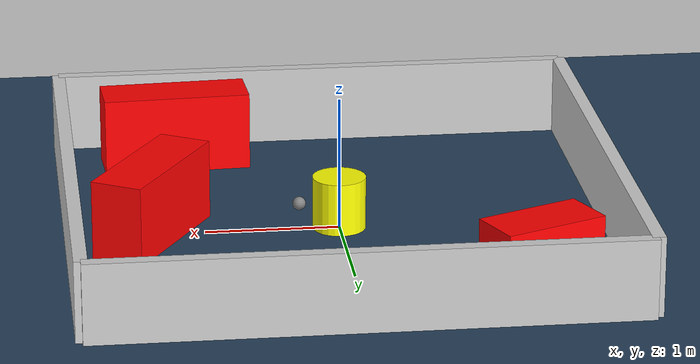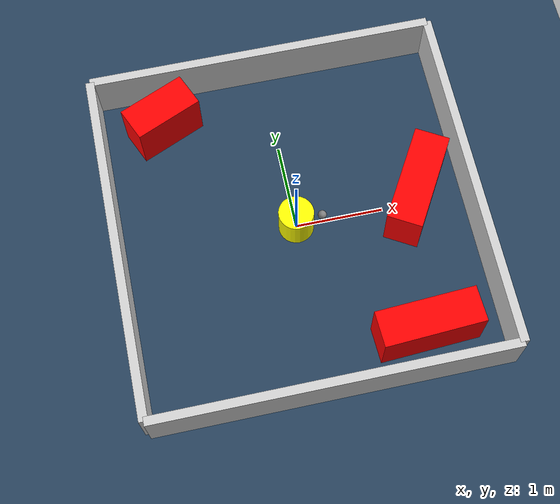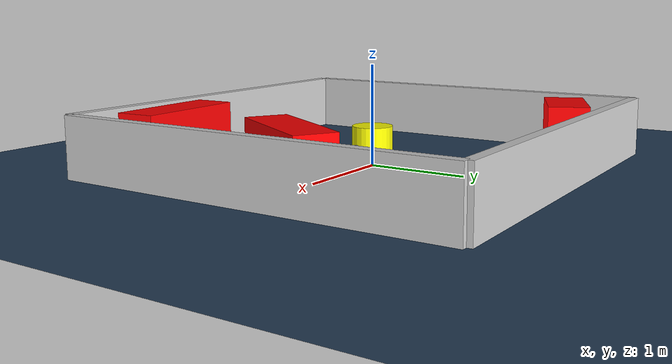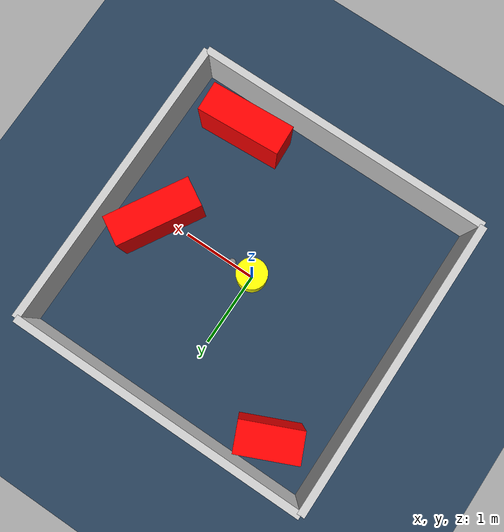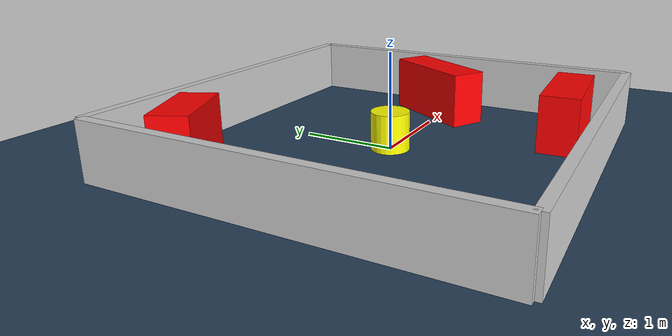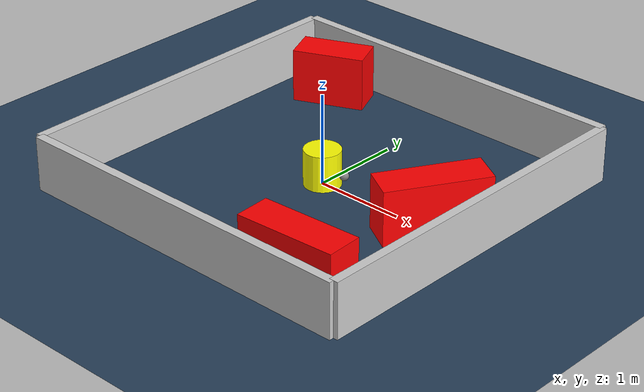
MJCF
<?xml version="1.0" ?>
<mujoco model="generated_environment">
  <option timestep="0.01" integrator="RK4" cone="elliptic"/>
  <default>
    <geom density="1"/>
  </default>
  <asset>
    <texture builtin="gradient" height="3072" rgb1="0.3 0.5 0.7" rgb2="0 0 0" type="skybox" width="512"/>
    <texture builtin="checker" height="300" mark="edge" markrgb="0.8 0.8 0.8" name="groundplane" rgb1="0.2 0.3 0.4" rgb2="0.1 0.2 0.3" type="2d" width="300"/>
    <material name="groundplane" reflectance="0.2" texrepeat="5 5" texture="groundplane" texuniform="true"/>
    <material name="robot" rgba="0.0 1.0 0.0 1"/>
  </asset>
  <worldbody>
    <light dir="0 0 -1" directional="true" pos="0 0 1.5"/>
    <geom condim="4" friction="1.0 0.005 0.001" material="groundplane" name="floor" size="0 0 0.05" type="plane"/>
    <body name="walls">
      <geom name="wall_1" condim="4" pos="-2.0 0.0 0.3" rgba="0.800000011920929 0.800000011920929 0.800000011920929 1.0" size="0.05 2.0 0.3" type="box"/>
      <geom name="wall_2" condim="4" pos="2.0 0.0 0.3" rgba="0.800000011920929 0.800000011920929 0.800000011920929 1.0" size="0.05 2.0 0.3" type="box"/>
      <geom name="wall_3" condim="4" pos="0.0 -2.0 0.3" rgba="0.800000011920929 0.800000011920929 0.800000011920929 1.0" size="2.0 0.05 0.3" type="box"/>
      <geom name="wall_4" condim="4" pos="0.0 2.0 0.3" rgba="0.800000011920929 0.800000011920929 0.800000011920929 1.0" size="2.0 0.05 0.3" type="box"/>
    </body>
    <body name="robot">
      <joint name="joint_x" type="slide" pos="0 0 0" axis="1 0 0"/>
      <joint name="joint_y" type="slide" pos="0 0 0" axis="0 1 0"/>
      <geom name="robot" type="sphere" pos="0.3 0.0 0.2" size="0.05" mass="5." friction="1.0 0.005 0.0001" condim="4" rgba="0.5 0.5 0.5 1.0"/>
      <site name="sensor_ball"/>
    </body>
    <body name="obstacle_movable_1">
      <geom name="obstacle_movable_1" condim="4" pos="0.0 0.0 0.2" euler="0 0 0.0" friction="1.0 0.005 0.001" rgba="1.0 1.0 0.0 1.0" size="0.2 0.2 0.0" type="cylinder" mass="0.1"/>
      <joint type="free"/>
    </body>
    <body name="obstacle_2_static">
      <geom name="obstacle_2_static" condim="4" pos="1.3989135037640705 0.057270274913626906 0.3" euler="0 0 239.63381128879615" friction="1.0 0.005 0.001" rgba="1 0 0 1" size="0.566300139395808 0.2 0.3" type="box"/>
    </body>
    <body name="obstacle_3_static">
      <geom name="obstacle_3_static" condim="4" pos="1.1175027998383908 -1.5311221278779956 0.3" euler="0 0 3.0405746919593923" friction="1.0 0.005 0.001" rgba="1 0 0 1" size="0.563318277559252 0.2 0.3" type="box"/>
    </body>
    <body name="obstacle_4_static">
      <geom name="obstacle_4_static" condim="4" pos="-1.2604140780809543 1.5244341052826222 0.3" euler="0 0 23.698340220568372" friction="1.0 0.005 0.001" rgba="1 0 0 1" size="0.3992622737236313 0.2 0.3" type="box"/>
    </body>
  </worldbody>
  <actuator>
    <motor name="actuator_x" joint="joint_x" gear="1" ctrlrange="-1 1"/>
    <motor name="actuator_y" joint="joint_y" gear="1" ctrlrange="-1 1"/>
  </actuator>
</mujoco>
